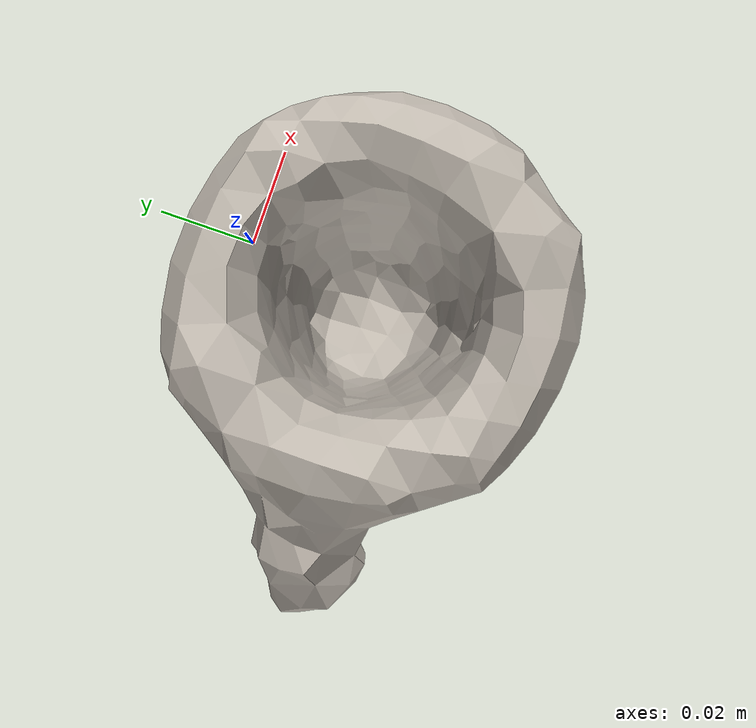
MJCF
<mujoco model="mug_kitchen_set_kitchen_set_mug_2_M">
  <asset>
    <mesh file="meshes/mug_kitchen_set_kitchen_set_mug_2_M.stl" name="mug_mesh" scale="0.5991130815846296 0.5991130815846296 0.5991130815846296"/>
    <texture type="cube" file="/home/jbw/Projects/gc-reorientation/bin_env/assets/textures/ceramic.png" rgb1="1 1 1" name="tex-mug"/>
    <material name="mug" reflectance="0.5" texrepeat="3 3" texture="tex-mug"/>
  </asset>
  <worldbody>
    <body>
      <body name="object">
        <geom pos="-0.007915480269944423 -0.027399384842446667 -0.0009576218298683773" quat="1 0 0 0" mesh="mug_mesh" type="mesh" solref="0.02 1" density="0" friction="1.0 1.0 1.0" material="mug" group="0" condim="4"/>
      </body>
      <site rgba="0 0 0 0" size="0.005" pos="0 0 -0.05" name="bottom_site"/>
      <site rgba="0 0 0 0" size="0.005" pos="0 0 0.03" name="top_site"/>
      <site rgba="0 0 0 0" size="0.005" pos="0.02 0.015 0" name="horizontal_radius_site"/>
    </body>
  </worldbody>
</mujoco>
